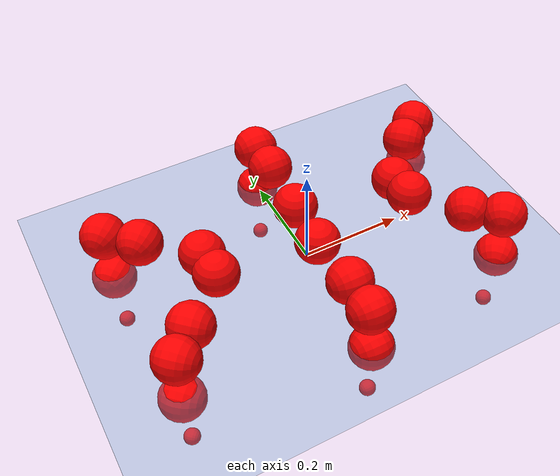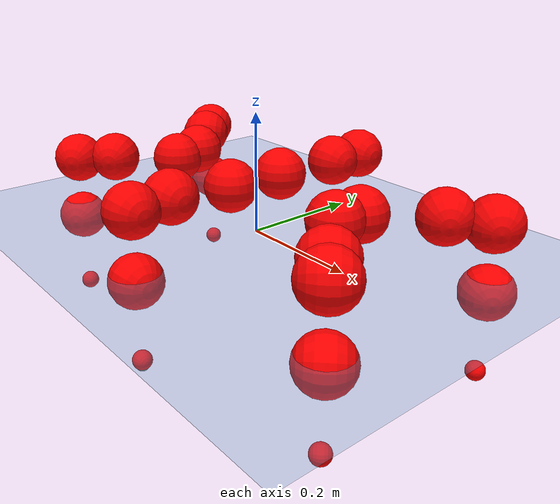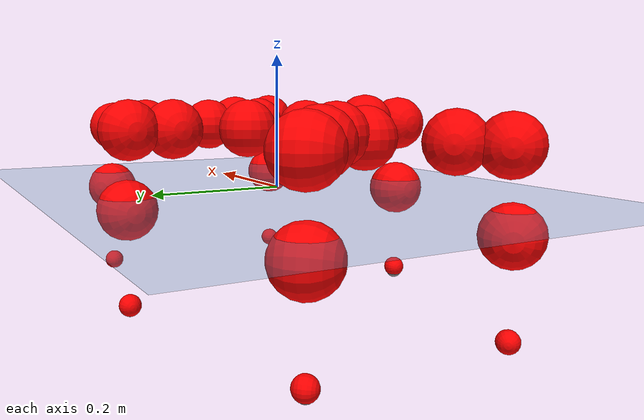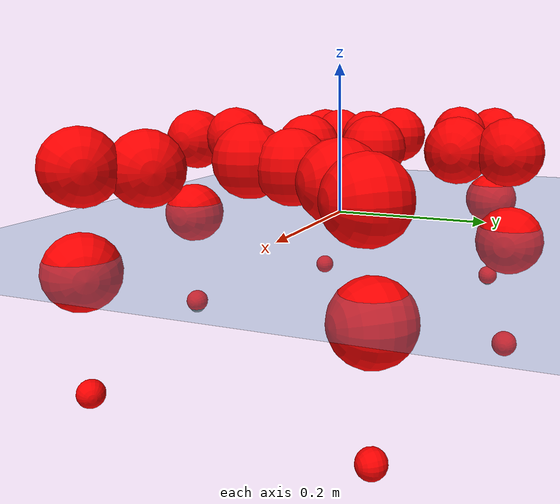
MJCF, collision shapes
<mujoco model="Golem">
  <compiler angle="radian" assetdir="assets" balanceinertia="true" inertiafromgeom="false"/>

  <option timestep="0.005" density="1.2" viscosity="2e-05"/>

  <size nkey="1"/>

  <visual>
    <quality shadowsize="8192"/>
    <map shadowclip="0.5"/>
  </visual>

  <default>
    <default class="/">
      <joint armature="0.01" damping="0.01" frictionloss="0.01"/>
      <geom contype="0" conaffinity="0" group="1" solref="-1000 -80"/>
      <site size="0.01 0.005 0.005" group="5"/>
      <general forcelimited="true" biastype="affine" gainprm="25" biasprm="0 -25 -0.5"/>
      <default class="visual">
        <geom type="mesh" group="2"/>
      </default>
      <default class="collision">
        <geom group="3"/>
      </default>
      <default class="foot">
        <geom size="0.01 0 0" condim="6" group="4" priority="1" solimp="0.015 1 0.01"/>
      </default>
      <default class="reward_collision_sphere">
        <geom group="5" rgba="1 0 0 1"/>
      </default>
    </default>
  </default>

  <asset>
    <texture type="skybox" colorspace="auto" name="//unnamed_texture_0" builtin="gradient" rgb1="0.95 0.95 0.95" rgb2="0.95 0.95 0.95" width="100" height="600"/>
    <texture type="2d" colorspace="auto" name="texplane" builtin="checker" rgb1="0.345 0.575 0.748" rgb2="0.345 0.575 0.748" markrgb="1 1 1" width="512" height="512"/>
    <material name="MatPlane" class="/" texture="texplane" texuniform="true" texrepeat="2 2" specular="0.9"/>
    <mesh name="body" class="/" file="body.stl" scale="0.001 0.001 0.001"/>
    <mesh name="coxa" class="/" file="coxa.stl" scale="0.001 0.001 0.001"/>
    <mesh name="femur" class="/" file="femur.stl" scale="0.001 0.001 0.001"/>
    <mesh name="tibia" class="/" file="tibia.stl" scale="0.001 0.001 0.001"/>
    <mesh name="tarsus" class="/" file="tarsus.stl" scale="0.001 0.001 0.001"/>
  </asset>

  <worldbody>
    <geom name="floor" class="/" size="100 100 0.125" type="plane" group="0" material="MatPlane"/>
    <light name="toplight_shadow" class="/" pos="0 0 5" dir="0.0990148 0.0990148 -0.990148" type="directional" ambient="0.04 0.04 0.04" diffuse="0.55 0.55 0.55" specular="0.12 0.12 0.12"/>
    <light name="toplight_fill" class="/" pos="0 0 5" dir="0.0990148 0.0990148 -0.990148" type="directional" castshadow="false" ambient="0.04 0.04 0.04" diffuse="0.3 0.3 0.3" specular="0.08 0.08 0.08"/>
    <body name="trunk" pos="0.00229253 -0.000196027 0.00529868" quat="1 -1.62782e-05 -5.05892e-05 -2.08628e-05">
      <inertial pos="7.80793e-05 -0.00341459 0.00335375" quat="0.999998 0.00179032 0.000402093 -0.00105438" mass="4.38701" diaginertia="0.0325399 0.00100757 0.0346274"/>
      <joint name="//unnamed_joint_0" type="free"/>
      <geom name="//unnamed_geom_1" class="/" pos="0 0 0.0826442" quat="1 0 0 0" type="mesh" rgba="0.9 0.9 0.9 1" mesh="body"/>
      <site name="imu" class="/" pos="0.165841 0.00077034 0.109041" size="0.0106967"/>
      <camera name="track" class="/" pos="0 -1.27544 0" quat="0.707107 0.707107 0 0" mode="trackcom"/>
      <camera name="ego_camera" class="/" pos="0.166399 0 0.129131" quat="-0.5 -0.5 0.5 0.5"/>
      <body name="coxa_RR" pos="-0.222707 -0.0522147 0.0803129" quat="0.384254 0.000455108 -0.00302082 -0.923222">
        <inertial pos="0.00638558 0.00149012 0.00222919" quat="0.999782 -0.0190979 0.00183882 0.00820654" mass="0.242545" diaginertia="0.0345885 0.001069 0.0382698"/>
        <joint name="coxa_joint_RR" class="/" pos="0 0 0" axis="-0.00371569 0.0075162 -0.999965" stiffness="0.00445929" range="-3.13709 3.18514" armature="0.00999611" damping="0" frictionloss="0.0084424"/>
        <geom name="//unnamed_geom_2" class="/" type="mesh" rgba="0.2 0.2 0.2 1" mesh="coxa"/>
        <geom name="//unnamed_geom_3" class="reward_collision_sphere" size="0.042787" pos="-0.0383997 0 0"/>
        <body name="femur_RR" pos="0.0766982 -0.00194074 -0.00299359" quat="0.499941 -0.499974 0.500088 0.499997">
          <inertial pos="-0.0023093 -0.000570039 -0.0051836" quat="0.999999 -0.000559603 0.000504123 -0.00107883" mass="0.24886" diaginertia="0.0348959 0.00107561 0.0393642"/>
          <joint name="femur_joint_RR" class="/" pos="0 0 0" axis="-0.0207511 0.00366687 -0.999778" range="-3.10834 3.14058" armature="0.0108285" damping="0.0242816" frictionloss="0.00995573"/>
          <geom name="//unnamed_geom_4" class="/" type="mesh" rgba="0.9 0.9 0.9 1" mesh="femur"/>
          <geom name="//unnamed_geom_5" class="reward_collision_sphere" size="0.042787"/>
          <body name="tibia_RR" pos="0.00300973 -0.0669018 0.00158227" quat="3.79517e-05 1 -3.6694e-05 1.16222e-05">
            <inertial pos="-0.000122616 -0.00437377 0.00526261" quat="0.999761 0.00525347 -0.0197422 0.00775646" mass="0.239448" diaginertia="0.0362078 0.00107365 0.0370852"/>
            <joint name="tibia_joint_RR" class="/" pos="0 0 0" axis="0.00800414 -0.00471433 0.999957" stiffness="0.00338474" range="-3.13753 3.18929" armature="0.0101625" damping="0.00748131" frictionloss="0.0119534"/>
            <geom name="//unnamed_geom_6" class="/" type="mesh" rgba="0.2 0.2 0.2 1" mesh="tibia"/>
            <geom name="//unnamed_geom_7" class="reward_collision_sphere" size="0.042787"/>
            <body name="tarsus_RR" pos="0.112707 0.00479916 0.00300083" quat="0.999997 -0.00107187 0.00150029 0.00153275">
              <inertial pos="0.0780555 0.00616932 0.000684651" quat="0.493416 0.507366 0.496364 0.502736" mass="0.257085" diaginertia="0.0340908 0.000993759 0.0359039"/>
              <joint name="tarsus_joint_RR" class="/" pos="0 0 0" axis="0.00222785 -0.000494926 0.999997" range="-3.15233 3.09314" armature="0.0106518" damping="0.0198136" frictionloss="0.00944549"/>
              <geom name="//unnamed_geom_8" class="/" type="mesh" rgba="0.9 0.9 0.9 1" mesh="tarsus"/>
              <geom name="foot_1" class="foot" size="0.00983387" pos="0.143359 0 0" quat="0 -0.707107 0 0.707107"/>
              <geom name="//unnamed_geom_10" class="reward_collision_sphere" size="0.042787"/>
              <geom name="//unnamed_geom_11" class="reward_collision_sphere" size="0.0160451" pos="0.137599 0 0"/>
              <site name="foot_1" class="foot" pos="0.143359 0 0" quat="0 -0.707107 0 0.707107" size="0.0106967"/>
            </body>
          </body>
        </body>
      </body>
      <body name="coxa_RM" pos="-0.00620375 -0.0864024 0.0840854" quat="0.706981 -0.00126977 -0.000973337 -0.707231">
        <inertial pos="-2.1445e-05 0.00139782 0.00712327" quat="0.99997 -0.00164983 0.00651587 0.00375568" mass="0.253097" diaginertia="0.0368521 0.0011519 0.0374736"/>
        <joint name="coxa_joint_RM" class="/" pos="0 0 0" axis="0.00821906 0.00171 -0.999965" range="-3.15211 3.09277" armature="0.0108088" damping="0.0157115" frictionloss="0.0098676"/>
        <geom name="//unnamed_geom_12" class="/" type="mesh" rgba="0.2 0.2 0.2 1" mesh="coxa"/>
        <geom name="//unnamed_geom_13" class="reward_collision_sphere" size="0.042787" pos="-0.0383997 0 0"/>
        <body name="femur_RM" pos="0.0732957 0.00117647 0.00784133" quat="0.502008 -0.500084 0.49733 0.500567">
          <inertial pos="-0.00206738 0.00146464 0.00123833" quat="0.999594 0.00926238 0.0266483 -0.00387393" mass="0.25138" diaginertia="0.0326171 0.00106118 0.0354131"/>
          <joint name="femur_joint_RM" class="/" pos="0 0 0" axis="-0.00129005 0.00589877 -0.999982" stiffness="0.00150172" range="-3.06339 3.06164" armature="0.00723944" damping="0" frictionloss="0.00984747"/>
          <geom name="//unnamed_geom_14" class="/" type="mesh" rgba="0.9 0.9 0.9 1" mesh="femur"/>
          <geom name="//unnamed_geom_15" class="reward_collision_sphere" size="0.042787"/>
          <body name="tibia_RM" pos="0.00523301 -0.0665578 0.000503399" quat="7.54878e-05 1 -0.000105958 0.000106201">
            <inertial pos="-0.00109992 0.00197973 0.00489068" quat="0.999839 0.0132552 0.0105306 -0.00589035" mass="0.272373" diaginertia="0.0363917 0.00110991 0.0353614"/>
            <joint name="tibia_joint_RM" class="/" pos="0 0 0" axis="0.00647842 -0.00849127 0.999943" range="-3.06844 3.21763" armature="0.0127538" damping="0.00751622" frictionloss="0.010093"/>
            <geom name="//unnamed_geom_16" class="/" type="mesh" rgba="0.2 0.2 0.2 1" mesh="tibia"/>
            <geom name="//unnamed_geom_17" class="reward_collision_sphere" size="0.042787"/>
            <body name="tarsus_RM" pos="0.108971 0.0036798 -0.00613146" quat="1 9.5093e-05 -8.58039e-05 -0.000179286">
              <inertial pos="0.0763951 0.00120261 -0.000127077" quat="0.495565 0.495978 0.496539 0.511732" mass="0.245072" diaginertia="0.0335828 0.00105509 0.0351245"/>
              <joint name="tarsus_joint_RM" class="/" pos="0 0 0" axis="0.00173723 0.00922043 0.999956" stiffness="0.0235489" range="-3.09804 2.9916" armature="0.0105757" damping="0.034435" frictionloss="0.00949604"/>
              <geom name="//unnamed_geom_18" class="/" type="mesh" rgba="0.9 0.9 0.9 1" mesh="tarsus"/>
              <geom name="foot_2" class="foot" size="0.0124982" pos="0.143359 0 0" quat="0 -0.707107 0 0.707107"/>
              <geom name="//unnamed_geom_20" class="reward_collision_sphere" size="0.042787"/>
              <geom name="//unnamed_geom_21" class="reward_collision_sphere" size="0.0160451" pos="0.137599 0 0"/>
              <site name="foot_2" class="foot" pos="0.143359 0 0" quat="0 -0.707107 0 0.707107" size="0.0106967"/>
            </body>
          </body>
        </body>
      </body>
      <body name="coxa_RF" pos="0.231465 -0.0537665 0.0876641" quat="0.92427 0.00112559 -0.00182627 -0.381733">
        <inertial pos="-0.00500885 0.00468978 -0.00224943" quat="0.999947 0.00796699 -0.000335704 -0.00646723" mass="0.236184" diaginertia="0.0323488 0.00102013 0.0365279"/>
        <joint name="coxa_joint_RF" class="/" pos="0 0 0" axis="0.0159035 0.0151105 -0.999759" range="-3.14591 3.08832" armature="0.0104908" damping="0.0140564" frictionloss="0.0103482"/>
        <geom name="//unnamed_geom_22" class="/" type="mesh" rgba="0.2 0.2 0.2 1" mesh="coxa"/>
        <geom name="//unnamed_geom_23" class="reward_collision_sphere" size="0.042787" pos="-0.0383997 0 0"/>
        <body name="femur_RF" pos="0.0743885 -0.00750478 -0.00411925" quat="0.497112 -0.502203 0.499804 0.500866">
          <inertial pos="0.00216013 -0.00247466 -0.000193217" quat="0.999987 -0.00307343 -0.000862703 -0.00392086" mass="0.24584" diaginertia="0.0342886 0.00108523 0.0350082"/>
          <joint name="femur_joint_RF" class="/" pos="0 0 0" axis="0.00150818 0.0070214 -0.999974" stiffness="0.0141369" range="-3.14617 3.1218" armature="0.00929413" damping="0.0131819" frictionloss="0.00997049"/>
          <geom name="//unnamed_geom_24" class="/" type="mesh" rgba="0.9 0.9 0.9 1" mesh="femur"/>
          <geom name="//unnamed_geom_25" class="reward_collision_sphere" size="0.042787"/>
          <body name="tibia_RF" pos="-0.00489886 -0.0671044 -0.000373748" quat="0.000568484 0.999999 0.000479759 -0.000775058">
            <inertial pos="-0.00269776 0.00333981 4.00744e-05" quat="0.999998 -0.000577939 0.00147808 0.00142059" mass="0.266786" diaginertia="0.037584 0.00112496 0.0365109"/>
            <joint name="tibia_joint_RF" class="/" pos="0 0 0" axis="-0.00140827 0.00644923 0.999978" stiffness="0.025396" range="-3.10158 3.2141" armature="0.0107873" damping="0.0485263" frictionloss="0.0106635"/>
            <geom name="//unnamed_geom_26" class="/" type="mesh" rgba="0.2 0.2 0.2 1" mesh="tibia"/>
            <geom name="//unnamed_geom_27" class="reward_collision_sphere" size="0.042787"/>
            <body name="tarsus_RF" pos="0.111112 0.00481989 -0.000305731" quat="0.999999 0.000352202 0.000257053 -0.00105225">
              <inertial pos="0.0778905 0.00173139 0.00168982" quat="0.499439 0.500063 0.500131 0.500367" mass="0.243477" diaginertia="0.0353648 0.00101415 0.0374247"/>
              <joint name="tarsus_joint_RF" class="/" pos="0 0 0" axis="-0.0104493 -0.00864952 0.999908" range="-3.1596 3.09501" armature="0.0118302" damping="0" frictionloss="0.00943578"/>
              <geom name="//unnamed_geom_28" class="/" type="mesh" rgba="0.9 0.9 0.9 1" mesh="tarsus"/>
              <geom name="foot_3" class="foot" size="0.010189" pos="0.143359 0 0" quat="0 -0.707107 0 0.707107"/>
              <geom name="//unnamed_geom_30" class="reward_collision_sphere" size="0.042787"/>
              <geom name="//unnamed_geom_31" class="reward_collision_sphere" size="0.0160451" pos="0.137599 0 0"/>
              <site name="foot_3" class="foot" pos="0.143359 0 0" quat="0 -0.707107 0 0.707107" size="0.0106967"/>
            </body>
          </body>
        </body>
      </body>
      <body name="coxa_LR" pos="-0.227963 0.0500227 0.0862917" quat="0.382938 0.000181161 0.000233394 0.923774">
        <inertial pos="0.000242073 -0.0010323 0.00289049" quat="0.999929 0.00790318 -0.00817615 -0.00348242" mass="0.262358" diaginertia="0.0371949 0.00109119 0.0376261"/>
        <joint name="coxa_joint_LR" class="/" pos="0 0 0" axis="0.016817 -0.00630363 -0.999839" range="-3.14224 3.09199" armature="0.0111164" damping="0.00489269" frictionloss="0.00906124"/>
        <geom name="//unnamed_geom_32" class="/" type="mesh" rgba="0.2 0.2 0.2 1" mesh="coxa"/>
        <geom name="//unnamed_geom_33" class="reward_collision_sphere" size="0.042787" pos="-0.0383997 0 0"/>
        <body name="femur_LR" pos="0.0795411 0.00626075 -0.00135605" quat="0.500738 -0.49989 0.499156 0.500214">
          <inertial pos="-0.00205935 -5.84968e-05 0.00640951" quat="0.999997 0.000830803 0.000167177 0.002272" mass="0.257709" diaginertia="0.0363579 0.00112058 0.0377414"/>
          <joint name="femur_joint_LR" class="/" pos="0 0 0" axis="0.0216912 0.0247951 0.999457" stiffness="0.00771943" range="-3.1524 3.1339" armature="0.00991133" damping="0" frictionloss="0.00943764"/>
          <geom name="//unnamed_geom_34" class="/" type="mesh" rgba="0.9 0.9 0.9 1" mesh="femur"/>
          <geom name="//unnamed_geom_35" class="reward_collision_sphere" size="0.042787"/>
          <body name="tibia_LR" pos="0.003235 -0.0711385 0.00218585" quat="0.000276505 1 -0.000225913 -0.000912421">
            <inertial pos="-0.00215432 -0.00438615 -0.00181516" quat="0.999947 0.00480702 -0.00439475 0.00794886" mass="0.24043" diaginertia="0.0360672 0.00103633 0.0336484"/>
            <joint name="tibia_joint_LR" class="/" pos="0 0 0" axis="0.00955809 -0.0356792 -0.999318" range="-3.21107 3.28829" armature="0.00706739" damping="0.0424843" frictionloss="0.00959649"/>
            <geom name="//unnamed_geom_36" class="/" type="mesh" rgba="0.2 0.2 0.2 1" mesh="tibia"/>
            <geom name="//unnamed_geom_37" class="reward_collision_sphere" size="0.042787"/>
            <body name="tarsus_LR" pos="0.113913 0.00023707 -0.000964789" quat="1 0.000379029 0.000187272 -0.000826802">
              <inertial pos="0.0703775 -0.0021863 0.00751866" quat="0.501265 0.498984 0.500225 0.499524" mass="0.247271" diaginertia="0.0329416 0.00100984 0.0364015"/>
              <joint name="tarsus_joint_LR" class="/" pos="0 0 0" axis="-0.000239971 -0.00299196 -0.999995" range="-3.16724 3.15763" armature="0.012225" damping="0" frictionloss="0.0107695"/>
              <geom name="//unnamed_geom_38" class="/" type="mesh" rgba="0.9 0.9 0.9 1" mesh="tarsus"/>
              <geom name="foot_4" class="foot" size="0.0113144" pos="0.143359 0 0" quat="0.707107 0 -0.707107 0"/>
              <geom name="//unnamed_geom_40" class="reward_collision_sphere" size="0.042787"/>
              <geom name="//unnamed_geom_41" class="reward_collision_sphere" size="0.0160451" pos="0.137599 0 0"/>
              <site name="foot_4" class="foot" pos="0.143359 0 0" quat="0.707107 0 -0.707107 0" size="0.0106967"/>
            </body>
          </body>
        </body>
      </body>
      <body name="coxa_LM" pos="0.000210352 0.0873673 0.0851988" quat="0.706913 -0.000713538 -0.000684456 0.7073">
        <inertial pos="0.000855659 0.00500285 -0.00682111" quat="1 0.000809634 7.48778e-05 -0.000204244" mass="0.234563" diaginertia="0.0330354 0.00103026 0.0356667"/>
        <joint name="coxa_joint_LM" class="/" pos="0 0 0" axis="-0.0153237 0.0104804 -0.999828" range="-3.17548 3.11789" armature="0.0141434" damping="0" frictionloss="0.0106077"/>
        <geom name="//unnamed_geom_42" class="/" type="mesh" rgba="0.2 0.2 0.2 1" mesh="coxa"/>
        <geom name="//unnamed_geom_43" class="reward_collision_sphere" size="0.042787" pos="-0.0383997 0 0"/>
        <body name="femur_LM" pos="0.0765123 -0.00571788 0.00156551" quat="0.499749 -0.500149 0.500011 0.500091">
          <inertial pos="0.00627319 -0.00131477 0.00161924" quat="0.999958 -0.004446 -0.00542514 0.00594221" mass="0.262413" diaginertia="0.0360236 0.00111357 0.0392457"/>
          <joint name="femur_joint_LM" class="/" pos="0 0 0" axis="-0.0216147 -0.0152734 0.99965" range="-3.1469 3.15322" armature="0.00957338" damping="0.0101107" frictionloss="0.00896207"/>
          <geom name="//unnamed_geom_44" class="/" type="mesh" rgba="0.9 0.9 0.9 1" mesh="femur"/>
          <geom name="//unnamed_geom_45" class="reward_collision_sphere" size="0.042787"/>
          <body name="tibia_LM" pos="-0.000163259 -0.0647832 0.000135188" quat="-0.000468174 1 0.000641047 -0.000161265">
            <inertial pos="0.00234381 0.00095251 -0.00260496" quat="0.999867 -0.0162472 -0.00118176 -0.000884942" mass="0.2558" diaginertia="0.0342004 0.00102588 0.0366181"/>
            <joint name="tibia_joint_LM" class="/" pos="0 0 0" axis="0.00235251 -0.010619 -0.999941" range="-3.0925 3.04761" armature="0.0122293" damping="0.0108833" frictionloss="0.0108192"/>
            <geom name="//unnamed_geom_46" class="/" type="mesh" rgba="0.2 0.2 0.2 1" mesh="tibia"/>
            <geom name="//unnamed_geom_47" class="reward_collision_sphere" size="0.042787"/>
            <body name="tarsus_LM" pos="0.111309 0.00486098 4.58933e-05" quat="1 0.000201645 8.83229e-05 -0.000244962">
              <inertial pos="0.0711185 -0.0009848 -0.00115922" quat="0.49954 0.501057 0.499457 0.499944" mass="0.246406" diaginertia="0.0335468 0.00103369 0.0339175"/>
              <joint name="tarsus_joint_LM" class="/" pos="0 0 0" axis="-0.00100426 0.00268186 -0.999996" stiffness="0.0200665" range="-3.17732 3.11085" armature="0.011012" damping="0.0338157" frictionloss="0.00976045"/>
              <geom name="//unnamed_geom_48" class="/" type="mesh" rgba="0.9 0.9 0.9 1" mesh="tarsus"/>
              <geom name="foot_5" class="foot" size="0.0106412" pos="0.143359 0 0" quat="0.707107 0 -0.707107 0"/>
              <geom name="//unnamed_geom_50" class="reward_collision_sphere" size="0.042787"/>
              <geom name="//unnamed_geom_51" class="reward_collision_sphere" size="0.0160451" pos="0.137599 0 0"/>
              <site name="foot_5" class="foot" pos="0.143359 0 0" quat="0.707107 0 -0.707107 0" size="0.0106967"/>
            </body>
          </body>
        </body>
      </body>
      <body name="coxa_LF" pos="0.230116 0.0520433 0.0826977" quat="0.923953 0.00124491 -0.000693181 0.382504">
        <inertial pos="-0.00295 -0.00196587 0.00131668" quat="0.999635 -0.0208978 -0.0149589 0.00837515" mass="0.248788" diaginertia="0.0311663 0.00107768 0.035901"/>
        <joint name="coxa_joint_LF" class="/" pos="0 0 0" axis="-0.00561643 0.00238019 -0.999981" range="-3.09175 3.2301" armature="0.0109784" damping="0.0072889" frictionloss="0.00959547"/>
        <geom name="//unnamed_geom_52" class="/" type="mesh" rgba="0.2 0.2 0.2 1" mesh="coxa"/>
        <geom name="//unnamed_geom_53" class="reward_collision_sphere" size="0.042787" pos="-0.0383997 0 0"/>
        <body name="femur_LF" pos="0.0812623 0.00393166 -0.000413424" quat="0.499909 -0.499838 0.499927 0.500326">
          <inertial pos="0.00372997 -0.00254388 -0.00080816" quat="0.999996 0.000247015 0.000692702 -0.00271029" mass="0.239587" diaginertia="0.0358344 0.00107739 0.0361055"/>
          <joint name="femur_joint_LF" class="/" pos="0 0 0" axis="-0.0228759 -0.0125392 0.99966" stiffness="0.0151419" range="-3.04363 3.17616" armature="0.0109886" damping="0.0205536" frictionloss="0.0107048"/>
          <geom name="//unnamed_geom_54" class="/" type="mesh" rgba="0.9 0.9 0.9 1" mesh="femur"/>
          <geom name="//unnamed_geom_55" class="reward_collision_sphere" size="0.042787"/>
          <body name="tibia_LF" pos="0.00612273 -0.0677327 -0.00488196" quat="0.000190917 0.999999 -0.000702064 -0.000988865">
            <inertial pos="0.00353475 -0.000487645 -0.00207398" quat="0.999331 -0.00516398 -0.0131766 -0.0337231" mass="0.226882" diaginertia="0.0352475 0.00108695 0.0354194"/>
            <joint name="tibia_joint_LF" class="/" pos="0 0 0" axis="-0.00792995 -0.00698294 -0.999944" stiffness="0.0212169" range="-3.14401 3.14205" armature="0.0113901" damping="0.0286238" frictionloss="0.00945592"/>
            <geom name="//unnamed_geom_56" class="/" type="mesh" rgba="0.2 0.2 0.2 1" mesh="tibia"/>
            <geom name="//unnamed_geom_57" class="reward_collision_sphere" size="0.042787"/>
            <body name="tarsus_LF" pos="0.111026 0.00351987 -0.00481034" quat="0.999999 -0.000551311 -0.000411727 0.00073292">
              <inertial pos="0.077882 -0.00226744 0.0013318" quat="0.491854 0.502148 0.500864 0.505037" mass="0.277408" diaginertia="0.036628 0.00112841 0.0376903"/>
              <joint name="tarsus_joint_LF" class="/" pos="0 0 0" axis="0.00117304 -0.00467851 -0.999988" stiffness="0.0107441" range="-3.17564 3.12948" armature="0.0108226" damping="0" frictionloss="0.0113702"/>
              <geom name="//unnamed_geom_58" class="/" type="mesh" rgba="0.9 0.9 0.9 1" mesh="tarsus"/>
              <geom name="foot_6" class="foot" size="0.00983743" pos="0.143359 0 0" quat="0.707107 0 -0.707107 0"/>
              <geom name="//unnamed_geom_60" class="reward_collision_sphere" size="0.042787"/>
              <geom name="//unnamed_geom_61" class="reward_collision_sphere" size="0.0160451" pos="0.137599 0 0"/>
              <site name="foot_6" class="foot" pos="0.143359 0 0" quat="0.707107 0 -0.707107 0" size="0.0106967"/>
            </body>
          </body>
        </body>
      </body>
    </body>
  </worldbody>

  <contact>
    <pair class="/" geom1="floor" geom2="foot_1" name="//unnamed_contact_0"/>
    <pair class="/" geom1="floor" geom2="foot_2" name="//unnamed_contact_1"/>
    <pair class="/" geom1="floor" geom2="foot_3" name="//unnamed_contact_2"/>
    <pair class="/" geom1="floor" geom2="foot_4" name="//unnamed_contact_3"/>
    <pair class="/" geom1="floor" geom2="foot_5" name="//unnamed_contact_4"/>
    <pair class="/" geom1="floor" geom2="foot_6" name="//unnamed_contact_5"/>
  </contact>

  <actuator>
    <general name="coxa_joint_RR" class="/" joint="coxa_joint_RR" forcerange="-7.23123 7.23123" gainprm="26.1538" biasprm="0 -26.1538 -0.482796"/>
    <general name="femur_joint_RR" class="/" joint="femur_joint_RR" forcerange="-7.35318 7.35318" gainprm="26.1538" biasprm="0 -26.1538 -0.482796"/>
    <general name="tibia_joint_RR" class="/" joint="tibia_joint_RR" forcerange="-9.05817 9.05817" gainprm="26.1538" biasprm="0 -26.1538 -0.482796"/>
    <general name="tarsus_joint_RR" class="/" joint="tarsus_joint_RR" forcerange="-8.01101 8.01101" gainprm="26.1538" biasprm="0 -26.1538 -0.482796"/>
    <general name="coxa_joint_RM" class="/" joint="coxa_joint_RM" forcerange="-5.63336 5.63336" gainprm="26.1538" biasprm="0 -26.1538 -0.482796"/>
    <general name="femur_joint_RM" class="/" joint="femur_joint_RM" forcerange="-7.28773 7.28773" gainprm="26.1538" biasprm="0 -26.1538 -0.482796"/>
    <general name="tibia_joint_RM" class="/" joint="tibia_joint_RM" forcerange="-7.95979 7.95979" gainprm="26.1538" biasprm="0 -26.1538 -0.482796"/>
    <general name="tarsus_joint_RM" class="/" joint="tarsus_joint_RM" forcerange="-9.07644 9.07644" gainprm="26.1538" biasprm="0 -26.1538 -0.482796"/>
    <general name="coxa_joint_RF" class="/" joint="coxa_joint_RF" forcerange="-6.7487 6.7487" gainprm="26.1538" biasprm="0 -26.1538 -0.482796"/>
    <general name="femur_joint_RF" class="/" joint="femur_joint_RF" forcerange="-7.84308 7.84308" gainprm="26.1538" biasprm="0 -26.1538 -0.482796"/>
    <general name="tibia_joint_RF" class="/" joint="tibia_joint_RF" forcerange="-7.57049 7.57049" gainprm="26.1538" biasprm="0 -26.1538 -0.482796"/>
    <general name="tarsus_joint_RF" class="/" joint="tarsus_joint_RF" forcerange="-7.72959 7.72959" gainprm="26.1538" biasprm="0 -26.1538 -0.482796"/>
    <general name="coxa_joint_LR" class="/" joint="coxa_joint_LR" forcerange="-6.2669 6.2669" gainprm="26.1538" biasprm="0 -26.1538 -0.482796"/>
    <general name="femur_joint_LR" class="/" joint="femur_joint_LR" forcerange="-7.74419 7.74419" gainprm="26.1538" biasprm="0 -26.1538 -0.482796"/>
    <general name="tibia_joint_LR" class="/" joint="tibia_joint_LR" forcerange="-7.01557 7.01557" gainprm="26.1538" biasprm="0 -26.1538 -0.482796"/>
    <general name="tarsus_joint_LR" class="/" joint="tarsus_joint_LR" forcerange="-6.08441 6.08441" gainprm="26.1538" biasprm="0 -26.1538 -0.482796"/>
    <general name="coxa_joint_LM" class="/" joint="coxa_joint_LM" forcerange="-8.99088 8.99088" gainprm="26.1538" biasprm="0 -26.1538 -0.482796"/>
    <general name="femur_joint_LM" class="/" joint="femur_joint_LM" forcerange="-8.22117 8.22117" gainprm="26.1538" biasprm="0 -26.1538 -0.482796"/>
    <general name="tibia_joint_LM" class="/" joint="tibia_joint_LM" forcerange="-6.37828 6.37828" gainprm="26.1538" biasprm="0 -26.1538 -0.482796"/>
    <general name="tarsus_joint_LM" class="/" joint="tarsus_joint_LM" forcerange="-5.73429 5.73429" gainprm="26.1538" biasprm="0 -26.1538 -0.482796"/>
    <general name="coxa_joint_LF" class="/" joint="coxa_joint_LF" forcerange="-8.54093 8.54093" gainprm="26.1538" biasprm="0 -26.1538 -0.482796"/>
    <general name="femur_joint_LF" class="/" joint="femur_joint_LF" forcerange="-8.46623 8.46623" gainprm="26.1538" biasprm="0 -26.1538 -0.482796"/>
    <general name="tibia_joint_LF" class="/" joint="tibia_joint_LF" forcerange="-7.42991 7.42991" gainprm="26.1538" biasprm="0 -26.1538 -0.482796"/>
    <general name="tarsus_joint_LF" class="/" joint="tarsus_joint_LF" forcerange="-7.82634 7.82634" gainprm="26.1538" biasprm="0 -26.1538 -0.482796"/>
  </actuator>

  <sensor>
    <gyro site="imu" name="imu_angular_velocity"/>
    <velocimeter site="imu" name="imu_linear_velocity"/>
    <framelinvel objtype="site" objname="foot_1" name="foot_1_global_linear_velocity"/>
    <framelinvel objtype="site" objname="foot_2" name="foot_2_global_linear_velocity"/>
    <framelinvel objtype="site" objname="foot_3" name="foot_3_global_linear_velocity"/>
    <framelinvel objtype="site" objname="foot_4" name="foot_4_global_linear_velocity"/>
    <framelinvel objtype="site" objname="foot_5" name="foot_5_global_linear_velocity"/>
    <framelinvel objtype="site" objname="foot_6" name="foot_6_global_linear_velocity"/>
  </sensor>

  <keyframe>
    <key name="home" qpos="0 0 0.1457 1 0 0 0 0 0 0 0 0 0 0 0 0 0 0 0 0 0 0 0 0 0 0 0 0 0 0 0"/>
  </keyframe>
</mujoco>
